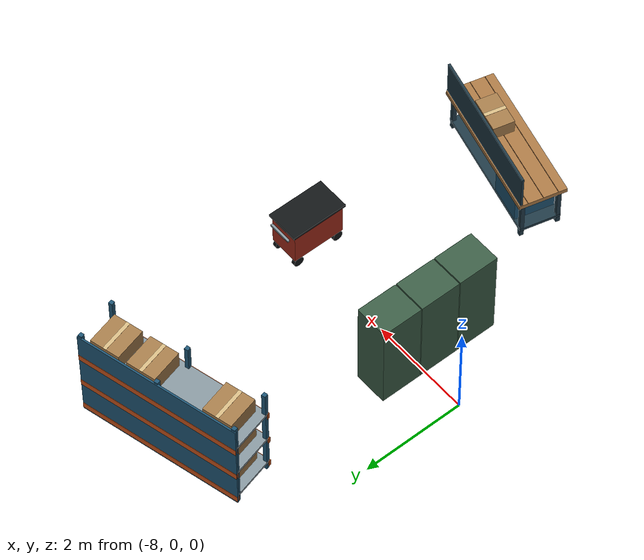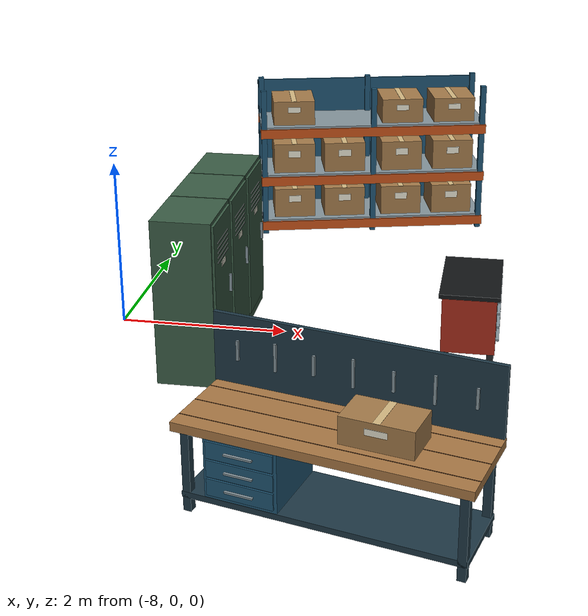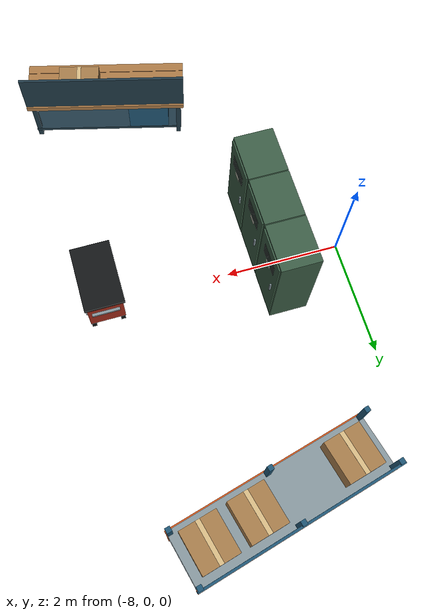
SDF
<sdf version="1.6">
 <world name="go2_workshop">
  <model name="storage_rack_west">
   <static>true</static>
   <pose>-5.5 4.0 0 0 0 0.250000</pose>
   <link name="body">
    <collision name="upright_0_0_collision">
     <pose>-1.55 -0.4 1.05 0 0 0</pose>
     <geometry><box><size>0.075 0.075 2.1</size></box></geometry>
    </collision>
    <visual name="upright_0_0">
     <pose>-1.55 -0.4 1.05 0 0 0</pose>
     <geometry><box><size>0.075 0.075 2.1</size></box></geometry>
     <material>
      <ambient>0.12 0.33 0.45 1</ambient>
      <diffuse>0.12 0.33 0.45 1</diffuse>
      <specular>.08 .08 .08 1</specular>
     </material>
    </visual>
    <collision name="upright_0_1_collision">
     <pose>-1.55 0.4 1.05 0 0 0</pose>
     <geometry><box><size>0.075 0.075 2.1</size></box></geometry>
    </collision>
    <visual name="upright_0_1">
     <pose>-1.55 0.4 1.05 0 0 0</pose>
     <geometry><box><size>0.075 0.075 2.1</size></box></geometry>
     <material>
      <ambient>0.12 0.33 0.45 1</ambient>
      <diffuse>0.12 0.33 0.45 1</diffuse>
      <specular>.08 .08 .08 1</specular>
     </material>
    </visual>
    <collision name="upright_1_0_collision">
     <pose>0 -0.4 1.05 0 0 0</pose>
     <geometry><box><size>0.075 0.075 2.1</size></box></geometry>
    </collision>
    <visual name="upright_1_0">
     <pose>0 -0.4 1.05 0 0 0</pose>
     <geometry><box><size>0.075 0.075 2.1</size></box></geometry>
     <material>
      <ambient>0.12 0.33 0.45 1</ambient>
      <diffuse>0.12 0.33 0.45 1</diffuse>
      <specular>.08 .08 .08 1</specular>
     </material>
    </visual>
    <collision name="upright_1_1_collision">
     <pose>0 0.4 1.05 0 0 0</pose>
     <geometry><box><size>0.075 0.075 2.1</size></box></geometry>
    </collision>
    <visual name="upright_1_1">
     <pose>0 0.4 1.05 0 0 0</pose>
     <geometry><box><size>0.075 0.075 2.1</size></box></geometry>
     <material>
      <ambient>0.12 0.33 0.45 1</ambient>
      <diffuse>0.12 0.33 0.45 1</diffuse>
      <specular>.08 .08 .08 1</specular>
     </material>
    </visual>
    <collision name="upright_2_0_collision">
     <pose>1.55 -0.4 1.05 0 0 0</pose>
     <geometry><box><size>0.075 0.075 2.1</size></box></geometry>
    </collision>
    <visual name="upright_2_0">
     <pose>1.55 -0.4 1.05 0 0 0</pose>
     <geometry><box><size>0.075 0.075 2.1</size></box></geometry>
     <material>
      <ambient>0.12 0.33 0.45 1</ambient>
      <diffuse>0.12 0.33 0.45 1</diffuse>
      <specular>.08 .08 .08 1</specular>
     </material>
    </visual>
    <collision name="upright_2_1_collision">
     <pose>1.55 0.4 1.05 0 0 0</pose>
     <geometry><box><size>0.075 0.075 2.1</size></box></geometry>
    </collision>
    <visual name="upright_2_1">
     <pose>1.55 0.4 1.05 0 0 0</pose>
     <geometry><box><size>0.075 0.075 2.1</size></box></geometry>
     <material>
      <ambient>0.12 0.33 0.45 1</ambient>
      <diffuse>0.12 0.33 0.45 1</diffuse>
      <specular>.08 .08 .08 1</specular>
     </material>
    </visual>
    <collision name="shelf_0_collision">
     <pose>0 0 0.18 0 0 0</pose>
     <geometry><box><size>3.18 0.87 0.055</size></box></geometry>
    </collision>
    <visual name="shelf_0">
     <pose>0 0 0.18 0 0 0</pose>
     <geometry><box><size>3.18 0.87 0.055</size></box></geometry>
     <material>
      <ambient>0.52 0.58 0.61 1</ambient>
      <diffuse>0.52 0.58 0.61 1</diffuse>
      <specular>.08 .08 .08 1</specular>
     </material>
    </visual>
    <collision name="beam_0_0_collision">
     <pose>0 -0.43 0.115 0 0 0</pose>
     <geometry><box><size>3.2 0.055 0.13</size></box></geometry>
    </collision>
    <visual name="beam_0_0">
     <pose>0 -0.43 0.115 0 0 0</pose>
     <geometry><box><size>3.2 0.055 0.13</size></box></geometry>
     <material>
      <ambient>0.78 0.32 0.1 1</ambient>
      <diffuse>0.78 0.32 0.1 1</diffuse>
      <specular>.08 .08 .08 1</specular>
     </material>
    </visual>
    <collision name="beam_0_1_collision">
     <pose>0 0.43 0.115 0 0 0</pose>
     <geometry><box><size>3.2 0.055 0.13</size></box></geometry>
    </collision>
    <visual name="beam_0_1">
     <pose>0 0.43 0.115 0 0 0</pose>
     <geometry><box><size>3.2 0.055 0.13</size></box></geometry>
     <material>
      <ambient>0.78 0.32 0.1 1</ambient>
      <diffuse>0.78 0.32 0.1 1</diffuse>
      <specular>.08 .08 .08 1</specular>
     </material>
    </visual>
    <collision name="shelf_1_collision">
     <pose>0 0 0.85 0 0 0</pose>
     <geometry><box><size>3.18 0.87 0.055</size></box></geometry>
    </collision>
    <visual name="shelf_1">
     <pose>0 0 0.85 0 0 0</pose>
     <geometry><box><size>3.18 0.87 0.055</size></box></geometry>
     <material>
      <ambient>0.52 0.58 0.61 1</ambient>
      <diffuse>0.52 0.58 0.61 1</diffuse>
      <specular>.08 .08 .08 1</specular>
     </material>
    </visual>
    <collision name="beam_1_0_collision">
     <pose>0 -0.43 0.785 0 0 0</pose>
     <geometry><box><size>3.2 0.055 0.13</size></box></geometry>
    </collision>
    <visual name="beam_1_0">
     <pose>0 -0.43 0.785 0 0 0</pose>
     <geometry><box><size>3.2 0.055 0.13</size></box></geometry>
     <material>
      <ambient>0.78 0.32 0.1 1</ambient>
      <diffuse>0.78 0.32 0.1 1</diffuse>
      <specular>.08 .08 .08 1</specular>
     </material>
    </visual>
    <collision name="beam_1_1_collision">
     <pose>0 0.43 0.785 0 0 0</pose>
     <geometry><box><size>3.2 0.055 0.13</size></box></geometry>
    </collision>
    <visual name="beam_1_1">
     <pose>0 0.43 0.785 0 0 0</pose>
     <geometry><box><size>3.2 0.055 0.13</size></box></geometry>
     <material>
      <ambient>0.78 0.32 0.1 1</ambient>
      <diffuse>0.78 0.32 0.1 1</diffuse>
      <specular>.08 .08 .08 1</specular>
     </material>
    </visual>
    <collision name="shelf_2_collision">
     <pose>0 0 1.55 0 0 0</pose>
     <geometry><box><size>3.18 0.87 0.055</size></box></geometry>
    </collision>
    <visual name="shelf_2">
     <pose>0 0 1.55 0 0 0</pose>
     <geometry><box><size>3.18 0.87 0.055</size></box></geometry>
     <material>
      <ambient>0.52 0.58 0.61 1</ambient>
      <diffuse>0.52 0.58 0.61 1</diffuse>
      <specular>.08 .08 .08 1</specular>
     </material>
    </visual>
    <collision name="beam_2_0_collision">
     <pose>0 -0.43 1.485 0 0 0</pose>
     <geometry><box><size>3.2 0.055 0.13</size></box></geometry>
    </collision>
    <visual name="beam_2_0">
     <pose>0 -0.43 1.485 0 0 0</pose>
     <geometry><box><size>3.2 0.055 0.13</size></box></geometry>
     <material>
      <ambient>0.78 0.32 0.1 1</ambient>
      <diffuse>0.78 0.32 0.1 1</diffuse>
      <specular>.08 .08 .08 1</specular>
     </material>
    </visual>
    <collision name="beam_2_1_collision">
     <pose>0 0.43 1.485 0 0 0</pose>
     <geometry><box><size>3.2 0.055 0.13</size></box></geometry>
    </collision>
    <visual name="beam_2_1">
     <pose>0 0.43 1.485 0 0 0</pose>
     <geometry><box><size>3.2 0.055 0.13</size></box></geometry>
     <material>
      <ambient>0.78 0.32 0.1 1</ambient>
      <diffuse>0.78 0.32 0.1 1</diffuse>
      <specular>.08 .08 .08 1</specular>
     </material>
    </visual>
    <collision name="back_panel_collision">
     <pose>0 0.435 1.04 0 0 0</pose>
     <geometry><box><size>3.2 0.035 2.04</size></box></geometry>
    </collision>
    <visual name="back_panel">
     <pose>0 0.435 1.04 0 0 0</pose>
     <geometry><box><size>3.2 0.035 2.04</size></box></geometry>
     <material>
      <ambient>0.12 0.33 0.45 1</ambient>
      <diffuse>0.12 0.33 0.45 1</diffuse>
      <specular>.08 .08 .08 1</specular>
     </material>
    </visual>
    <collision name="box_0_0_collision">
     <pose>-1.12 -0.015 0.418 0 0 0</pose>
     <geometry><box><size>0.58 0.64 0.42</size></box></geometry>
    </collision>
    <visual name="box_0_0">
     <pose>-1.12 -0.015 0.418 0 0 0</pose>
     <geometry><box><size>0.58 0.64 0.42</size></box></geometry>
     <material>
      <ambient>0.64 0.48 0.29 1</ambient>
      <diffuse>0.64 0.48 0.29 1</diffuse>
      <specular>.08 .08 .08 1</specular>
     </material>
    </visual>
    <visual name="box_0_0_tape">
     <pose>-1.12 -0.015 0.629 0 0 0</pose>
     <geometry><box><size>0.07 0.64 0.002</size></box></geometry>
     <material>
      <ambient>0.83 0.72 0.51 1</ambient>
      <diffuse>0.83 0.72 0.51 1</diffuse>
      <specular>.08 .08 .08 1</specular>
     </material>
     <cast_shadows>false</cast_shadows>
    </visual>
    <visual name="box_0_0_label">
     <pose>-1.12 -0.337 0.481 0 0 0</pose>
     <geometry><box><size>0.174 0.003 0.0966</size></box></geometry>
     <material>
      <ambient>0.9 0.89 0.82 1</ambient>
      <diffuse>0.9 0.89 0.82 1</diffuse>
      <specular>.08 .08 .08 1</specular>
     </material>
     <cast_shadows>false</cast_shadows>
    </visual>
    <collision name="box_0_1_collision">
     <pose>-0.4 -0.015 0.418 0 0 0</pose>
     <geometry><box><size>0.58 0.64 0.42</size></box></geometry>
    </collision>
    <visual name="box_0_1">
     <pose>-0.4 -0.015 0.418 0 0 0</pose>
     <geometry><box><size>0.58 0.64 0.42</size></box></geometry>
     <material>
      <ambient>0.64 0.48 0.29 1</ambient>
      <diffuse>0.64 0.48 0.29 1</diffuse>
      <specular>.08 .08 .08 1</specular>
     </material>
    </visual>
    <visual name="box_0_1_tape">
     <pose>-0.4 -0.015 0.629 0 0 0</pose>
     <geometry><box><size>0.07 0.64 0.002</size></box></geometry>
     <material>
      <ambient>0.83 0.72 0.51 1</ambient>
      <diffuse>0.83 0.72 0.51 1</diffuse>
      <specular>.08 .08 .08 1</specular>
     </material>
     <cast_shadows>false</cast_shadows>
    </visual>
    <visual name="box_0_1_label">
     <pose>-0.4 -0.337 0.481 0 0 0</pose>
     <geometry><box><size>0.174 0.003 0.0966</size></box></geometry>
     <material>
      <ambient>0.9 0.89 0.82 1</ambient>
      <diffuse>0.9 0.89 0.82 1</diffuse>
      <specular>.08 .08 .08 1</specular>
     </material>
     <cast_shadows>false</cast_shadows>
    </visual>
    <collision name="box_0_2_collision">
     <pose>0.42 -0.015 0.418 0 0 0</pose>
     <geometry><box><size>0.58 0.64 0.42</size></box></geometry>
    </collision>
    <visual name="box_0_2">
     <pose>0.42 -0.015 0.418 0 0 0</pose>
     <geometry><box><size>0.58 0.64 0.42</size></box></geometry>
     <material>
      <ambient>0.64 0.48 0.29 1</ambient>
      <diffuse>0.64 0.48 0.29 1</diffuse>
      <specular>.08 .08 .08 1</specular>
     </material>
    </visual>
    <visual name="box_0_2_tape">
     <pose>0.42 -0.015 0.629 0 0 0</pose>
     <geometry><box><size>0.07 0.64 0.002</size></box></geometry>
     <material>
      <ambient>0.83 0.72 0.51 1</ambient>
      <diffuse>0.83 0.72 0.51 1</diffuse>
      <specular>.08 .08 .08 1</specular>
     </material>
     <cast_shadows>false</cast_shadows>
    </visual>
    <visual name="box_0_2_label">
     <pose>0.42 -0.337 0.481 0 0 0</pose>
     <geometry><box><size>0.174 0.003 0.0966</size></box></geometry>
     <material>
      <ambient>0.9 0.89 0.82 1</ambient>
      <diffuse>0.9 0.89 0.82 1</diffuse>
      <specular>.08 .08 .08 1</specular>
     </material>
     <cast_shadows>false</cast_shadows>
    </visual>
    <collision name="box_0_3_collision">
     <pose>1.16 -0.015 0.418 0 0 0</pose>
     <geometry><box><size>0.58 0.64 0.42</size></box></geometry>
    </collision>
    <visual name="box_0_3">
     <pose>1.16 -0.015 0.418 0 0 0</pose>
     <geometry><box><size>0.58 0.64 0.42</size></box></geometry>
     <material>
      <ambient>0.64 0.48 0.29 1</ambient>
      <diffuse>0.64 0.48 0.29 1</diffuse>
      <specular>.08 .08 .08 1</specular>
     </material>
    </visual>
    <visual name="box_0_3_tape">
     <pose>1.16 -0.015 0.629 0 0 0</pose>
     <geometry><box><size>0.07 0.64 0.002</size></box></geometry>
     <material>
      <ambient>0.83 0.72 0.51 1</ambient>
      <diffuse>0.83 0.72 0.51 1</diffuse>
      <specular>.08 .08 .08 1</specular>
     </material>
     <cast_shadows>false</cast_shadows>
    </visual>
    <visual name="box_0_3_label">
     <pose>1.16 -0.337 0.481 0 0 0</pose>
     <geometry><box><size>0.174 0.003 0.0966</size></box></geometry>
     <material>
      <ambient>0.9 0.89 0.82 1</ambient>
      <diffuse>0.9 0.89 0.82 1</diffuse>
      <specular>.08 .08 .08 1</specular>
     </material>
     <cast_shadows>false</cast_shadows>
    </visual>
    <collision name="box_1_0_collision">
     <pose>-1.12 -0.015 1.088 0 0 0</pose>
     <geometry><box><size>0.58 0.64 0.42</size></box></geometry>
    </collision>
    <visual name="box_1_0">
     <pose>-1.12 -0.015 1.088 0 0 0</pose>
     <geometry><box><size>0.58 0.64 0.42</size></box></geometry>
     <material>
      <ambient>0.64 0.48 0.29 1</ambient>
      <diffuse>0.64 0.48 0.29 1</diffuse>
      <specular>.08 .08 .08 1</specular>
     </material>
    </visual>
    <visual name="box_1_0_tape">
     <pose>-1.12 -0.015 1.299 0 0 0</pose>
     <geometry><box><size>0.07 0.64 0.002</size></box></geometry>
     <material>
      <ambient>0.83 0.72 0.51 1</ambient>
      <diffuse>0.83 0.72 0.51 1</diffuse>
      <specular>.08 .08 .08 1</specular>
     </material>
     <cast_shadows>false</cast_shadows>
    </visual>
    <visual name="box_1_0_label">
     <pose>-1.12 -0.337 1.151 0 0 0</pose>
     <geometry><box><size>0.174 0.003 0.0966</size></box></geometry>
     <material>
      <ambient>0.9 0.89 0.82 1</ambient>
      <diffuse>0.9 0.89 0.82 1</diffuse>
      <specular>.08 .08 .08 1</specular>
     </material>
     <cast_shadows>false</cast_shadows>
    </visual>
    <collision name="box_1_1_collision">
     <pose>-0.4 -0.015 1.088 0 0 0</pose>
     <geometry><box><size>0.58 0.64 0.42</size></box></geometry>
    </collision>
    <visual name="box_1_1">
     <pose>-0.4 -0.015 1.088 0 0 0</pose>
     <geometry><box><size>0.58 0.64 0.42</size></box></geometry>
     <material>
      <ambient>0.64 0.48 0.29 1</ambient>
      <diffuse>0.64 0.48 0.29 1</diffuse>
      <specular>.08 .08 .08 1</specular>
     </material>
    </visual>
    <visual name="box_1_1_tape">
     <pose>-0.4 -0.015 1.299 0 0 0</pose>
     <geometry><box><size>0.07 0.64 0.002</size></box></geometry>
     <material>
      <ambient>0.83 0.72 0.51 1</ambient>
      <diffuse>0.83 0.72 0.51 1</diffuse>
      <specular>.08 .08 .08 1</specular>
     </material>
     <cast_shadows>false</cast_shadows>
    </visual>
    <visual name="box_1_1_label">
     <pose>-0.4 -0.337 1.151 0 0 0</pose>
     <geometry><box><size>0.174 0.003 0.0966</size></box></geometry>
     <material>
      <ambient>0.9 0.89 0.82 1</ambient>
      <diffuse>0.9 0.89 0.82 1</diffuse>
      <specular>.08 .08 .08 1</specular>
     </material>
     <cast_shadows>false</cast_shadows>
    </visual>
    <collision name="box_1_2_collision">
     <pose>0.42 -0.015 1.088 0 0 0</pose>
     <geometry><box><size>0.58 0.64 0.42</size></box></geometry>
    </collision>
    <visual name="box_1_2">
     <pose>0.42 -0.015 1.088 0 0 0</pose>
     <geometry><box><size>0.58 0.64 0.42</size></box></geometry>
     <material>
      <ambient>0.64 0.48 0.29 1</ambient>
      <diffuse>0.64 0.48 0.29 1</diffuse>
      <specular>.08 .08 .08 1</specular>
     </material>
    </visual>
    <visual name="box_1_2_tape">
     <pose>0.42 -0.015 1.299 0 0 0</pose>
     <geometry><box><size>0.07 0.64 0.002</size></box></geometry>
     <material>
      <ambient>0.83 0.72 0.51 1</ambient>
      <diffuse>0.83 0.72 0.51 1</diffuse>
      <specular>.08 .08 .08 1</specular>
     </material>
     <cast_shadows>false</cast_shadows>
    </visual>
    <visual name="box_1_2_label">
     <pose>0.42 -0.337 1.151 0 0 0</pose>
     <geometry><box><size>0.174 0.003 0.0966</size></box></geometry>
     <material>
      <ambient>0.9 0.89 0.82 1</ambient>
      <diffuse>0.9 0.89 0.82 1</diffuse>
      <specular>.08 .08 .08 1</specular>
     </material>
     <cast_shadows>false</cast_shadows>
    </visual>
    <collision name="box_1_3_collision">
     <pose>1.16 -0.015 1.088 0 0 0</pose>
     <geometry><box><size>0.58 0.64 0.42</size></box></geometry>
    </collision>
    <visual name="box_1_3">
     <pose>1.16 -0.015 1.088 0 0 0</pose>
     <geometry><box><size>0.58 0.64 0.42</size></box></geometry>
     <material>
      <ambient>0.64 0.48 0.29 1</ambient>
      <diffuse>0.64 0.48 0.29 1</diffuse>
      <specular>.08 .08 .08 1</specular>
     </material>
    </visual>
    <visual name="box_1_3_tape">
     <pose>1.16 -0.015 1.299 0 0 0</pose>
     <geometry><box><size>0.07 0.64 0.002</size></box></geometry>
     <material>
      <ambient>0.83 0.72 0.51 1</ambient>
      <diffuse>0.83 0.72 0.51 1</diffuse>
      <specular>.08 .08 .08 1</specular>
     </material>
     <cast_shadows>false</cast_shadows>
    </visual>
    <visual name="box_1_3_label">
     <pose>1.16 -0.337 1.151 0 0 0</pose>
     <geometry><box><size>0.174 0.003 0.0966</size></box></geometry>
     <material>
      <ambient>0.9 0.89 0.82 1</ambient>
      <diffuse>0.9 0.89 0.82 1</diffuse>
      <specular>.08 .08 .08 1</specular>
     </material>
     <cast_shadows>false</cast_shadows>
    </visual>
    <collision name="box_2_0_collision">
     <pose>-1.12 -0.015 1.748 0 0 0</pose>
     <geometry><box><size>0.58 0.64 0.34</size></box></geometry>
    </collision>
    <visual name="box_2_0">
     <pose>-1.12 -0.015 1.748 0 0 0</pose>
     <geometry><box><size>0.58 0.64 0.34</size></box></geometry>
     <material>
      <ambient>0.64 0.48 0.29 1</ambient>
      <diffuse>0.64 0.48 0.29 1</diffuse>
      <specular>.08 .08 .08 1</specular>
     </material>
    </visual>
    <visual name="box_2_0_tape">
     <pose>-1.12 -0.015 1.919 0 0 0</pose>
     <geometry><box><size>0.07 0.64 0.002</size></box></geometry>
     <material>
      <ambient>0.83 0.72 0.51 1</ambient>
      <diffuse>0.83 0.72 0.51 1</diffuse>
      <specular>.08 .08 .08 1</specular>
     </material>
     <cast_shadows>false</cast_shadows>
    </visual>
    <visual name="box_2_0_label">
     <pose>-1.12 -0.337 1.799 0 0 0</pose>
     <geometry><box><size>0.174 0.003 0.0782</size></box></geometry>
     <material>
      <ambient>0.9 0.89 0.82 1</ambient>
      <diffuse>0.9 0.89 0.82 1</diffuse>
      <specular>.08 .08 .08 1</specular>
     </material>
     <cast_shadows>false</cast_shadows>
    </visual>
    <collision name="box_2_2_collision">
     <pose>0.42 -0.015 1.748 0 0 0</pose>
     <geometry><box><size>0.58 0.64 0.34</size></box></geometry>
    </collision>
    <visual name="box_2_2">
     <pose>0.42 -0.015 1.748 0 0 0</pose>
     <geometry><box><size>0.58 0.64 0.34</size></box></geometry>
     <material>
      <ambient>0.64 0.48 0.29 1</ambient>
      <diffuse>0.64 0.48 0.29 1</diffuse>
      <specular>.08 .08 .08 1</specular>
     </material>
    </visual>
    <visual name="box_2_2_tape">
     <pose>0.42 -0.015 1.919 0 0 0</pose>
     <geometry><box><size>0.07 0.64 0.002</size></box></geometry>
     <material>
      <ambient>0.83 0.72 0.51 1</ambient>
      <diffuse>0.83 0.72 0.51 1</diffuse>
      <specular>.08 .08 .08 1</specular>
     </material>
     <cast_shadows>false</cast_shadows>
    </visual>
    <visual name="box_2_2_label">
     <pose>0.42 -0.337 1.799 0 0 0</pose>
     <geometry><box><size>0.174 0.003 0.0782</size></box></geometry>
     <material>
      <ambient>0.9 0.89 0.82 1</ambient>
      <diffuse>0.9 0.89 0.82 1</diffuse>
      <specular>.08 .08 .08 1</specular>
     </material>
     <cast_shadows>false</cast_shadows>
    </visual>
    <collision name="box_2_3_collision">
     <pose>1.16 -0.015 1.748 0 0 0</pose>
     <geometry><box><size>0.58 0.64 0.34</size></box></geometry>
    </collision>
    <visual name="box_2_3">
     <pose>1.16 -0.015 1.748 0 0 0</pose>
     <geometry><box><size>0.58 0.64 0.34</size></box></geometry>
     <material>
      <ambient>0.64 0.48 0.29 1</ambient>
      <diffuse>0.64 0.48 0.29 1</diffuse>
      <specular>.08 .08 .08 1</specular>
     </material>
    </visual>
    <visual name="box_2_3_tape">
     <pose>1.16 -0.015 1.919 0 0 0</pose>
     <geometry><box><size>0.07 0.64 0.002</size></box></geometry>
     <material>
      <ambient>0.83 0.72 0.51 1</ambient>
      <diffuse>0.83 0.72 0.51 1</diffuse>
      <specular>.08 .08 .08 1</specular>
     </material>
     <cast_shadows>false</cast_shadows>
    </visual>
    <visual name="box_2_3_label">
     <pose>1.16 -0.337 1.799 0 0 0</pose>
     <geometry><box><size>0.174 0.003 0.0782</size></box></geometry>
     <material>
      <ambient>0.9 0.89 0.82 1</ambient>
      <diffuse>0.9 0.89 0.82 1</diffuse>
      <specular>.08 .08 .08 1</specular>
     </material>
     <cast_shadows>false</cast_shadows>
    </visual>
   </link>
  </model>
  <model name="packing_bench">
   <static>true</static>
   <pose>-4.8 -3.8 0 0 0 -0.250000</pose>
   <link name="body">
    <collision name="worktop_collision">
     <pose>0 0 0.89 0 0 0</pose>
     <geometry><box><size>2.8 0.92 0.09</size></box></geometry>
    </collision>
    <visual name="worktop">
     <pose>0 0 0.89 0 0 0</pose>
     <geometry><box><size>2.8 0.92 0.09</size></box></geometry>
     <material>
      <ambient>0.66 0.47 0.27 1</ambient>
      <diffuse>0.66 0.47 0.27 1</diffuse>
      <specular>.08 .08 .08 1</specular>
     </material>
    </visual>
    <visual name="plank_seam_0">
     <pose>0 -0.29 0.936 0 0 0</pose>
     <geometry><box><size>2.8 0.008 0.002</size></box></geometry>
     <material>
      <ambient>0.39 0.24 0.12 1</ambient>
      <diffuse>0.39 0.24 0.12 1</diffuse>
      <specular>.08 .08 .08 1</specular>
     </material>
     <cast_shadows>false</cast_shadows>
    </visual>
    <visual name="plank_seam_1">
     <pose>0 0 0.936 0 0 0</pose>
     <geometry><box><size>2.8 0.008 0.002</size></box></geometry>
     <material>
      <ambient>0.39 0.24 0.12 1</ambient>
      <diffuse>0.39 0.24 0.12 1</diffuse>
      <specular>.08 .08 .08 1</specular>
     </material>
     <cast_shadows>false</cast_shadows>
    </visual>
    <visual name="plank_seam_2">
     <pose>0 0.29 0.936 0 0 0</pose>
     <geometry><box><size>2.8 0.008 0.002</size></box></geometry>
     <material>
      <ambient>0.39 0.24 0.12 1</ambient>
      <diffuse>0.39 0.24 0.12 1</diffuse>
      <specular>.08 .08 .08 1</specular>
     </material>
     <cast_shadows>false</cast_shadows>
    </visual>
    <collision name="leg_0_0_collision">
     <pose>-1.3 -0.35 0.425 0 0 0</pose>
     <geometry><box><size>0.08 0.08 0.85</size></box></geometry>
    </collision>
    <visual name="leg_0_0">
     <pose>-1.3 -0.35 0.425 0 0 0</pose>
     <geometry><box><size>0.08 0.08 0.85</size></box></geometry>
     <material>
      <ambient>0.12 0.22 0.27 1</ambient>
      <diffuse>0.12 0.22 0.27 1</diffuse>
      <specular>.08 .08 .08 1</specular>
     </material>
    </visual>
    <collision name="leg_0_1_collision">
     <pose>-1.3 0.35 0.425 0 0 0</pose>
     <geometry><box><size>0.08 0.08 0.85</size></box></geometry>
    </collision>
    <visual name="leg_0_1">
     <pose>-1.3 0.35 0.425 0 0 0</pose>
     <geometry><box><size>0.08 0.08 0.85</size></box></geometry>
     <material>
      <ambient>0.12 0.22 0.27 1</ambient>
      <diffuse>0.12 0.22 0.27 1</diffuse>
      <specular>.08 .08 .08 1</specular>
     </material>
    </visual>
    <collision name="leg_1_0_collision">
     <pose>1.3 -0.35 0.425 0 0 0</pose>
     <geometry><box><size>0.08 0.08 0.85</size></box></geometry>
    </collision>
    <visual name="leg_1_0">
     <pose>1.3 -0.35 0.425 0 0 0</pose>
     <geometry><box><size>0.08 0.08 0.85</size></box></geometry>
     <material>
      <ambient>0.12 0.22 0.27 1</ambient>
      <diffuse>0.12 0.22 0.27 1</diffuse>
      <specular>.08 .08 .08 1</specular>
     </material>
    </visual>
    <collision name="leg_1_1_collision">
     <pose>1.3 0.35 0.425 0 0 0</pose>
     <geometry><box><size>0.08 0.08 0.85</size></box></geometry>
    </collision>
    <visual name="leg_1_1">
     <pose>1.3 0.35 0.425 0 0 0</pose>
     <geometry><box><size>0.08 0.08 0.85</size></box></geometry>
     <material>
      <ambient>0.12 0.22 0.27 1</ambient>
      <diffuse>0.12 0.22 0.27 1</diffuse>
      <specular>.08 .08 .08 1</specular>
     </material>
    </visual>
    <collision name="lower_shelf_collision">
     <pose>0 0 0.17 0 0 0</pose>
     <geometry><box><size>2.7 0.78 0.06</size></box></geometry>
    </collision>
    <visual name="lower_shelf">
     <pose>0 0 0.17 0 0 0</pose>
     <geometry><box><size>2.7 0.78 0.06</size></box></geometry>
     <material>
      <ambient>0.12 0.22 0.27 1</ambient>
      <diffuse>0.12 0.22 0.27 1</diffuse>
      <specular>.08 .08 .08 1</specular>
     </material>
    </visual>
    <collision name="drawer_cabinet_collision">
     <pose>-0.756 0 0.52 0 0 0</pose>
     <geometry><box><size>0.72 0.77 0.65</size></box></geometry>
    </collision>
    <visual name="drawer_cabinet">
     <pose>-0.756 0 0.52 0 0 0</pose>
     <geometry><box><size>0.72 0.77 0.65</size></box></geometry>
     <material>
      <ambient>0.12 0.33 0.45 1</ambient>
      <diffuse>0.12 0.33 0.45 1</diffuse>
      <specular>.08 .08 .08 1</specular>
     </material>
    </visual>
    <visual name="drawer_0">
     <pose>-0.756 -0.393 0.32 0 0 0</pose>
     <geometry><box><size>0.66 0.022 0.17</size></box></geometry>
     <material>
      <ambient>0.12 0.33 0.45 1</ambient>
      <diffuse>0.12 0.33 0.45 1</diffuse>
      <specular>.08 .08 .08 1</specular>
     </material>
     <cast_shadows>false</cast_shadows>
    </visual>
    <visual name="handle_0">
     <pose>-0.756 -0.419 0.32 0 0 0</pose>
     <geometry><box><size>0.28 0.025 0.018</size></box></geometry>
     <material>
      <ambient>0.52 0.58 0.61 1</ambient>
      <diffuse>0.52 0.58 0.61 1</diffuse>
      <specular>.08 .08 .08 1</specular>
     </material>
     <cast_shadows>false</cast_shadows>
    </visual>
    <visual name="drawer_1">
     <pose>-0.756 -0.393 0.51 0 0 0</pose>
     <geometry><box><size>0.66 0.022 0.17</size></box></geometry>
     <material>
      <ambient>0.12 0.33 0.45 1</ambient>
      <diffuse>0.12 0.33 0.45 1</diffuse>
      <specular>.08 .08 .08 1</specular>
     </material>
     <cast_shadows>false</cast_shadows>
    </visual>
    <visual name="handle_1">
     <pose>-0.756 -0.419 0.51 0 0 0</pose>
     <geometry><box><size>0.28 0.025 0.018</size></box></geometry>
     <material>
      <ambient>0.52 0.58 0.61 1</ambient>
      <diffuse>0.52 0.58 0.61 1</diffuse>
      <specular>.08 .08 .08 1</specular>
     </material>
     <cast_shadows>false</cast_shadows>
    </visual>
    <visual name="drawer_2">
     <pose>-0.756 -0.393 0.7 0 0 0</pose>
     <geometry><box><size>0.66 0.022 0.17</size></box></geometry>
     <material>
      <ambient>0.12 0.33 0.45 1</ambient>
      <diffuse>0.12 0.33 0.45 1</diffuse>
      <specular>.08 .08 .08 1</specular>
     </material>
     <cast_shadows>false</cast_shadows>
    </visual>
    <visual name="handle_2">
     <pose>-0.756 -0.419 0.7 0 0 0</pose>
     <geometry><box><size>0.28 0.025 0.018</size></box></geometry>
     <material>
      <ambient>0.52 0.58 0.61 1</ambient>
      <diffuse>0.52 0.58 0.61 1</diffuse>
      <specular>.08 .08 .08 1</specular>
     </material>
     <cast_shadows>false</cast_shadows>
    </visual>
    <collision name="tool_case_collision">
     <pose>0.45 0 1.07 0 0 0</pose>
     <geometry><box><size>0.7 0.42 0.27</size></box></geometry>
    </collision>
    <visual name="tool_case">
     <pose>0.45 0 1.07 0 0 0</pose>
     <geometry><box><size>0.7 0.42 0.27</size></box></geometry>
     <material>
      <ambient>0.64 0.48 0.29 1</ambient>
      <diffuse>0.64 0.48 0.29 1</diffuse>
      <specular>.08 .08 .08 1</specular>
     </material>
    </visual>
    <visual name="tool_case_tape">
     <pose>0.45 0 1.206 0 0 0</pose>
     <geometry><box><size>0.07 0.42 0.002</size></box></geometry>
     <material>
      <ambient>0.83 0.72 0.51 1</ambient>
      <diffuse>0.83 0.72 0.51 1</diffuse>
      <specular>.08 .08 .08 1</specular>
     </material>
     <cast_shadows>false</cast_shadows>
    </visual>
    <visual name="tool_case_label">
     <pose>0.45 -0.212 1.1105 0 0 0</pose>
     <geometry><box><size>0.21 0.003 0.0621</size></box></geometry>
     <material>
      <ambient>0.9 0.89 0.82 1</ambient>
      <diffuse>0.9 0.89 0.82 1</diffuse>
      <specular>.08 .08 .08 1</specular>
     </material>
     <cast_shadows>false</cast_shadows>
    </visual>
    <collision name="tool_board_collision">
     <pose>0 0.42 1.3 0 0 0</pose>
     <geometry><box><size>2.8 0.045 0.7</size></box></geometry>
    </collision>
    <visual name="tool_board">
     <pose>0 0.42 1.3 0 0 0</pose>
     <geometry><box><size>2.8 0.045 0.7</size></box></geometry>
     <material>
      <ambient>0.12 0.22 0.27 1</ambient>
      <diffuse>0.12 0.22 0.27 1</diffuse>
      <specular>.08 .08 .08 1</specular>
     </material>
    </visual>
    <visual name="tool_0">
     <pose>-1.15 0.39 1.3 0 0 0</pose>
     <geometry><box><size>0.025 0.035 0.2</size></box></geometry>
     <material>
      <ambient>0.52 0.58 0.61 1</ambient>
      <diffuse>0.52 0.58 0.61 1</diffuse>
      <specular>.08 .08 .08 1</specular>
     </material>
     <cast_shadows>false</cast_shadows>
    </visual>
    <visual name="tool_1">
     <pose>-0.76667 0.39 1.3 0 0 0</pose>
     <geometry><box><size>0.025 0.035 0.28</size></box></geometry>
     <material>
      <ambient>0.52 0.58 0.61 1</ambient>
      <diffuse>0.52 0.58 0.61 1</diffuse>
      <specular>.08 .08 .08 1</specular>
     </material>
     <cast_shadows>false</cast_shadows>
    </visual>
    <visual name="tool_2">
     <pose>-0.38333 0.39 1.3 0 0 0</pose>
     <geometry><box><size>0.025 0.035 0.2</size></box></geometry>
     <material>
      <ambient>0.52 0.58 0.61 1</ambient>
      <diffuse>0.52 0.58 0.61 1</diffuse>
      <specular>.08 .08 .08 1</specular>
     </material>
     <cast_shadows>false</cast_shadows>
    </visual>
    <visual name="tool_3">
     <pose>0 0.39 1.3 0 0 0</pose>
     <geometry><box><size>0.025 0.035 0.28</size></box></geometry>
     <material>
      <ambient>0.52 0.58 0.61 1</ambient>
      <diffuse>0.52 0.58 0.61 1</diffuse>
      <specular>.08 .08 .08 1</specular>
     </material>
     <cast_shadows>false</cast_shadows>
    </visual>
    <visual name="tool_4">
     <pose>0.38333 0.39 1.3 0 0 0</pose>
     <geometry><box><size>0.025 0.035 0.2</size></box></geometry>
     <material>
      <ambient>0.52 0.58 0.61 1</ambient>
      <diffuse>0.52 0.58 0.61 1</diffuse>
      <specular>.08 .08 .08 1</specular>
     </material>
     <cast_shadows>false</cast_shadows>
    </visual>
    <visual name="tool_5">
     <pose>0.76667 0.39 1.3 0 0 0</pose>
     <geometry><box><size>0.025 0.035 0.28</size></box></geometry>
     <material>
      <ambient>0.52 0.58 0.61 1</ambient>
      <diffuse>0.52 0.58 0.61 1</diffuse>
      <specular>.08 .08 .08 1</specular>
     </material>
     <cast_shadows>false</cast_shadows>
    </visual>
    <visual name="tool_6">
     <pose>1.15 0.39 1.3 0 0 0</pose>
     <geometry><box><size>0.025 0.035 0.2</size></box></geometry>
     <material>
      <ambient>0.52 0.58 0.61 1</ambient>
      <diffuse>0.52 0.58 0.61 1</diffuse>
      <specular>.08 .08 .08 1</specular>
     </material>
     <cast_shadows>false</cast_shadows>
    </visual>
   </link>
  </model>
  <model name="tool_lockers">
   <static>true</static>
   <pose>-6.8 -0.3 0 0 0 1.570796</pose>
   <link name="body">
    <collision name="body_0_collision">
     <pose>-0.82 0 0.95 0 0 0</pose>
     <geometry><box><size>0.8 0.66 1.9</size></box></geometry>
    </collision>
    <visual name="body_0">
     <pose>-0.82 0 0.95 0 0 0</pose>
     <geometry><box><size>0.8 0.66 1.9</size></box></geometry>
     <material>
      <ambient>0.23 0.36 0.27 1</ambient>
      <diffuse>0.23 0.36 0.27 1</diffuse>
      <specular>.08 .08 .08 1</specular>
     </material>
    </visual>
    <visual name="door_0">
     <pose>-0.82 -0.342 1 0 0 0</pose>
     <geometry><box><size>0.74 0.028 1.72</size></box></geometry>
     <material>
      <ambient>0.23 0.36 0.27 1</ambient>
      <diffuse>0.23 0.36 0.27 1</diffuse>
      <specular>.08 .08 .08 1</specular>
     </material>
     <cast_shadows>false</cast_shadows>
    </visual>
    <visual name="handle_0">
     <pose>-0.57 -0.368 0.98 0 0 0</pose>
     <geometry><box><size>0.025 0.035 0.2</size></box></geometry>
     <material>
      <ambient>0.52 0.58 0.61 1</ambient>
      <diffuse>0.52 0.58 0.61 1</diffuse>
      <specular>.08 .08 .08 1</specular>
     </material>
     <cast_shadows>false</cast_shadows>
    </visual>
    <visual name="vent_0_0">
     <pose>-0.82 -0.359 1.62 0 0 0</pose>
     <geometry><box><size>0.46 0.006 0.012</size></box></geometry>
     <material>
      <ambient>0.07 0.08 0.085 1</ambient>
      <diffuse>0.07 0.08 0.085 1</diffuse>
      <specular>.08 .08 .08 1</specular>
     </material>
     <cast_shadows>false</cast_shadows>
    </visual>
    <visual name="vent_0_1">
     <pose>-0.82 -0.359 1.565 0 0 0</pose>
     <geometry><box><size>0.46 0.006 0.012</size></box></geometry>
     <material>
      <ambient>0.07 0.08 0.085 1</ambient>
      <diffuse>0.07 0.08 0.085 1</diffuse>
      <specular>.08 .08 .08 1</specular>
     </material>
     <cast_shadows>false</cast_shadows>
    </visual>
    <visual name="vent_0_2">
     <pose>-0.82 -0.359 1.51 0 0 0</pose>
     <geometry><box><size>0.46 0.006 0.012</size></box></geometry>
     <material>
      <ambient>0.07 0.08 0.085 1</ambient>
      <diffuse>0.07 0.08 0.085 1</diffuse>
      <specular>.08 .08 .08 1</specular>
     </material>
     <cast_shadows>false</cast_shadows>
    </visual>
    <visual name="vent_0_3">
     <pose>-0.82 -0.359 1.455 0 0 0</pose>
     <geometry><box><size>0.46 0.006 0.012</size></box></geometry>
     <material>
      <ambient>0.07 0.08 0.085 1</ambient>
      <diffuse>0.07 0.08 0.085 1</diffuse>
      <specular>.08 .08 .08 1</specular>
     </material>
     <cast_shadows>false</cast_shadows>
    </visual>
    <visual name="vent_0_4">
     <pose>-0.82 -0.359 1.4 0 0 0</pose>
     <geometry><box><size>0.46 0.006 0.012</size></box></geometry>
     <material>
      <ambient>0.07 0.08 0.085 1</ambient>
      <diffuse>0.07 0.08 0.085 1</diffuse>
      <specular>.08 .08 .08 1</specular>
     </material>
     <cast_shadows>false</cast_shadows>
    </visual>
    <visual name="nameplate_0">
     <pose>-0.82 -0.36 1.33 0 0 0</pose>
     <geometry><box><size>0.16 0.006 0.06</size></box></geometry>
     <material>
      <ambient>0.9 0.89 0.82 1</ambient>
      <diffuse>0.9 0.89 0.82 1</diffuse>
      <specular>.08 .08 .08 1</specular>
     </material>
     <cast_shadows>false</cast_shadows>
    </visual>
    <collision name="body_1_collision">
     <pose>0 0 0.95 0 0 0</pose>
     <geometry><box><size>0.8 0.66 1.9</size></box></geometry>
    </collision>
    <visual name="body_1">
     <pose>0 0 0.95 0 0 0</pose>
     <geometry><box><size>0.8 0.66 1.9</size></box></geometry>
     <material>
      <ambient>0.23 0.36 0.27 1</ambient>
      <diffuse>0.23 0.36 0.27 1</diffuse>
      <specular>.08 .08 .08 1</specular>
     </material>
    </visual>
    <visual name="door_1">
     <pose>0 -0.342 1 0 0 0</pose>
     <geometry><box><size>0.74 0.028 1.72</size></box></geometry>
     <material>
      <ambient>0.23 0.36 0.27 1</ambient>
      <diffuse>0.23 0.36 0.27 1</diffuse>
      <specular>.08 .08 .08 1</specular>
     </material>
     <cast_shadows>false</cast_shadows>
    </visual>
    <visual name="handle_1">
     <pose>0.25 -0.368 0.98 0 0 0</pose>
     <geometry><box><size>0.025 0.035 0.2</size></box></geometry>
     <material>
      <ambient>0.52 0.58 0.61 1</ambient>
      <diffuse>0.52 0.58 0.61 1</diffuse>
      <specular>.08 .08 .08 1</specular>
     </material>
     <cast_shadows>false</cast_shadows>
    </visual>
    <visual name="vent_1_0">
     <pose>0 -0.359 1.62 0 0 0</pose>
     <geometry><box><size>0.46 0.006 0.012</size></box></geometry>
     <material>
      <ambient>0.07 0.08 0.085 1</ambient>
      <diffuse>0.07 0.08 0.085 1</diffuse>
      <specular>.08 .08 .08 1</specular>
     </material>
     <cast_shadows>false</cast_shadows>
    </visual>
    <visual name="vent_1_1">
     <pose>0 -0.359 1.565 0 0 0</pose>
     <geometry><box><size>0.46 0.006 0.012</size></box></geometry>
     <material>
      <ambient>0.07 0.08 0.085 1</ambient>
      <diffuse>0.07 0.08 0.085 1</diffuse>
      <specular>.08 .08 .08 1</specular>
     </material>
     <cast_shadows>false</cast_shadows>
    </visual>
    <visual name="vent_1_2">
     <pose>0 -0.359 1.51 0 0 0</pose>
     <geometry><box><size>0.46 0.006 0.012</size></box></geometry>
     <material>
      <ambient>0.07 0.08 0.085 1</ambient>
      <diffuse>0.07 0.08 0.085 1</diffuse>
      <specular>.08 .08 .08 1</specular>
     </material>
     <cast_shadows>false</cast_shadows>
    </visual>
    <visual name="vent_1_3">
     <pose>0 -0.359 1.455 0 0 0</pose>
     <geometry><box><size>0.46 0.006 0.012</size></box></geometry>
     <material>
      <ambient>0.07 0.08 0.085 1</ambient>
      <diffuse>0.07 0.08 0.085 1</diffuse>
      <specular>.08 .08 .08 1</specular>
     </material>
     <cast_shadows>false</cast_shadows>
    </visual>
    <visual name="vent_1_4">
     <pose>0 -0.359 1.4 0 0 0</pose>
     <geometry><box><size>0.46 0.006 0.012</size></box></geometry>
     <material>
      <ambient>0.07 0.08 0.085 1</ambient>
      <diffuse>0.07 0.08 0.085 1</diffuse>
      <specular>.08 .08 .08 1</specular>
     </material>
     <cast_shadows>false</cast_shadows>
    </visual>
    <visual name="nameplate_1">
     <pose>0 -0.36 1.33 0 0 0</pose>
     <geometry><box><size>0.16 0.006 0.06</size></box></geometry>
     <material>
      <ambient>0.9 0.89 0.82 1</ambient>
      <diffuse>0.9 0.89 0.82 1</diffuse>
      <specular>.08 .08 .08 1</specular>
     </material>
     <cast_shadows>false</cast_shadows>
    </visual>
    <collision name="body_2_collision">
     <pose>0.82 0 0.95 0 0 0</pose>
     <geometry><box><size>0.8 0.66 1.9</size></box></geometry>
    </collision>
    <visual name="body_2">
     <pose>0.82 0 0.95 0 0 0</pose>
     <geometry><box><size>0.8 0.66 1.9</size></box></geometry>
     <material>
      <ambient>0.23 0.36 0.27 1</ambient>
      <diffuse>0.23 0.36 0.27 1</diffuse>
      <specular>.08 .08 .08 1</specular>
     </material>
    </visual>
    <visual name="door_2">
     <pose>0.82 -0.342 1 0 0 0</pose>
     <geometry><box><size>0.74 0.028 1.72</size></box></geometry>
     <material>
      <ambient>0.23 0.36 0.27 1</ambient>
      <diffuse>0.23 0.36 0.27 1</diffuse>
      <specular>.08 .08 .08 1</specular>
     </material>
     <cast_shadows>false</cast_shadows>
    </visual>
    <visual name="handle_2">
     <pose>1.07 -0.368 0.98 0 0 0</pose>
     <geometry><box><size>0.025 0.035 0.2</size></box></geometry>
     <material>
      <ambient>0.52 0.58 0.61 1</ambient>
      <diffuse>0.52 0.58 0.61 1</diffuse>
      <specular>.08 .08 .08 1</specular>
     </material>
     <cast_shadows>false</cast_shadows>
    </visual>
    <visual name="vent_2_0">
     <pose>0.82 -0.359 1.62 0 0 0</pose>
     <geometry><box><size>0.46 0.006 0.012</size></box></geometry>
     <material>
      <ambient>0.07 0.08 0.085 1</ambient>
      <diffuse>0.07 0.08 0.085 1</diffuse>
      <specular>.08 .08 .08 1</specular>
     </material>
     <cast_shadows>false</cast_shadows>
    </visual>
    <visual name="vent_2_1">
     <pose>0.82 -0.359 1.565 0 0 0</pose>
     <geometry><box><size>0.46 0.006 0.012</size></box></geometry>
     <material>
      <ambient>0.07 0.08 0.085 1</ambient>
      <diffuse>0.07 0.08 0.085 1</diffuse>
      <specular>.08 .08 .08 1</specular>
     </material>
     <cast_shadows>false</cast_shadows>
    </visual>
    <visual name="vent_2_2">
     <pose>0.82 -0.359 1.51 0 0 0</pose>
     <geometry><box><size>0.46 0.006 0.012</size></box></geometry>
     <material>
      <ambient>0.07 0.08 0.085 1</ambient>
      <diffuse>0.07 0.08 0.085 1</diffuse>
      <specular>.08 .08 .08 1</specular>
     </material>
     <cast_shadows>false</cast_shadows>
    </visual>
    <visual name="vent_2_3">
     <pose>0.82 -0.359 1.455 0 0 0</pose>
     <geometry><box><size>0.46 0.006 0.012</size></box></geometry>
     <material>
      <ambient>0.07 0.08 0.085 1</ambient>
      <diffuse>0.07 0.08 0.085 1</diffuse>
      <specular>.08 .08 .08 1</specular>
     </material>
     <cast_shadows>false</cast_shadows>
    </visual>
    <visual name="vent_2_4">
     <pose>0.82 -0.359 1.4 0 0 0</pose>
     <geometry><box><size>0.46 0.006 0.012</size></box></geometry>
     <material>
      <ambient>0.07 0.08 0.085 1</ambient>
      <diffuse>0.07 0.08 0.085 1</diffuse>
      <specular>.08 .08 .08 1</specular>
     </material>
     <cast_shadows>false</cast_shadows>
    </visual>
    <visual name="nameplate_2">
     <pose>0.82 -0.36 1.33 0 0 0</pose>
     <geometry><box><size>0.16 0.006 0.06</size></box></geometry>
     <material>
      <ambient>0.9 0.89 0.82 1</ambient>
      <diffuse>0.9 0.89 0.82 1</diffuse>
      <specular>.08 .08 .08 1</specular>
     </material>
     <cast_shadows>false</cast_shadows>
    </visual>
   </link>
  </model>
  <model name="tool_trolley">
   <static>true</static>
   <pose>-3.8 -0.2 0 0 0 1.570796</pose>
   <link name="body">
    <collision name="cabinet_collision">
     <pose>0 0 0.57 0 0 0</pose>
     <geometry><box><size>1.05 0.6 0.66</size></box></geometry>
    </collision>
    <visual name="cabinet">
     <pose>0 0 0.57 0 0 0</pose>
     <geometry><box><size>1.05 0.6 0.66</size></box></geometry>
     <material>
      <ambient>0.64 0.17 0.1 1</ambient>
      <diffuse>0.64 0.17 0.1 1</diffuse>
      <specular>.08 .08 .08 1</specular>
     </material>
    </visual>
    <collision name="caster_0_0_collision">
     <pose>-0.43 -0.25 0.13 1.5708 0 0</pose>
     <geometry><cylinder><radius>0.1</radius><length>0.075</length></cylinder></geometry>
    </collision>
    <visual name="caster_0_0">
     <pose>-0.43 -0.25 0.13 1.5708 0 0</pose>
     <geometry><cylinder><radius>0.1</radius><length>0.075</length></cylinder></geometry>
     <material>
      <ambient>0.07 0.08 0.085 1</ambient>
      <diffuse>0.07 0.08 0.085 1</diffuse>
      <specular>.08 .08 .08 1</specular>
     </material>
    </visual>
    <collision name="caster_0_1_collision">
     <pose>-0.43 0.25 0.13 1.5708 0 0</pose>
     <geometry><cylinder><radius>0.1</radius><length>0.075</length></cylinder></geometry>
    </collision>
    <visual name="caster_0_1">
     <pose>-0.43 0.25 0.13 1.5708 0 0</pose>
     <geometry><cylinder><radius>0.1</radius><length>0.075</length></cylinder></geometry>
     <material>
      <ambient>0.07 0.08 0.085 1</ambient>
      <diffuse>0.07 0.08 0.085 1</diffuse>
      <specular>.08 .08 .08 1</specular>
     </material>
    </visual>
    <collision name="caster_1_0_collision">
     <pose>0.43 -0.25 0.13 1.5708 0 0</pose>
     <geometry><cylinder><radius>0.1</radius><length>0.075</length></cylinder></geometry>
    </collision>
    <visual name="caster_1_0">
     <pose>0.43 -0.25 0.13 1.5708 0 0</pose>
     <geometry><cylinder><radius>0.1</radius><length>0.075</length></cylinder></geometry>
     <material>
      <ambient>0.07 0.08 0.085 1</ambient>
      <diffuse>0.07 0.08 0.085 1</diffuse>
      <specular>.08 .08 .08 1</specular>
     </material>
    </visual>
    <collision name="caster_1_1_collision">
     <pose>0.43 0.25 0.13 1.5708 0 0</pose>
     <geometry><cylinder><radius>0.1</radius><length>0.075</length></cylinder></geometry>
    </collision>
    <visual name="caster_1_1">
     <pose>0.43 0.25 0.13 1.5708 0 0</pose>
     <geometry><cylinder><radius>0.1</radius><length>0.075</length></cylinder></geometry>
     <material>
      <ambient>0.07 0.08 0.085 1</ambient>
      <diffuse>0.07 0.08 0.085 1</diffuse>
      <specular>.08 .08 .08 1</specular>
     </material>
    </visual>
    <collision name="rubber_top_collision">
     <pose>0 0 0.925 0 0 0</pose>
     <geometry><box><size>1.13 0.67 0.05</size></box></geometry>
    </collision>
    <visual name="rubber_top">
     <pose>0 0 0.925 0 0 0</pose>
     <geometry><box><size>1.13 0.67 0.05</size></box></geometry>
     <material>
      <ambient>0.07 0.08 0.085 1</ambient>
      <diffuse>0.07 0.08 0.085 1</diffuse>
      <specular>.08 .08 .08 1</specular>
     </material>
    </visual>
    <visual name="drawer_handle_0">
     <pose>0 -0.32 0.36 0 0 0</pose>
     <geometry><box><size>0.78 0.035 0.02</size></box></geometry>
     <material>
      <ambient>0.52 0.58 0.61 1</ambient>
      <diffuse>0.52 0.58 0.61 1</diffuse>
      <specular>.08 .08 .08 1</specular>
     </material>
     <cast_shadows>false</cast_shadows>
    </visual>
    <visual name="drawer_handle_1">
     <pose>0 -0.32 0.52 0 0 0</pose>
     <geometry><box><size>0.78 0.035 0.02</size></box></geometry>
     <material>
      <ambient>0.52 0.58 0.61 1</ambient>
      <diffuse>0.52 0.58 0.61 1</diffuse>
      <specular>.08 .08 .08 1</specular>
     </material>
     <cast_shadows>false</cast_shadows>
    </visual>
    <visual name="drawer_handle_2">
     <pose>0 -0.32 0.68 0 0 0</pose>
     <geometry><box><size>0.78 0.035 0.02</size></box></geometry>
     <material>
      <ambient>0.52 0.58 0.61 1</ambient>
      <diffuse>0.52 0.58 0.61 1</diffuse>
      <specular>.08 .08 .08 1</specular>
     </material>
     <cast_shadows>false</cast_shadows>
    </visual>
    <visual name="drawer_handle_3">
     <pose>0 -0.32 0.82 0 0 0</pose>
     <geometry><box><size>0.78 0.035 0.02</size></box></geometry>
     <material>
      <ambient>0.52 0.58 0.61 1</ambient>
      <diffuse>0.52 0.58 0.61 1</diffuse>
      <specular>.08 .08 .08 1</specular>
     </material>
     <cast_shadows>false</cast_shadows>
    </visual>
    <collision name="push_handle_collision">
     <pose>0.6 0 0.8 0 0 0</pose>
     <geometry><box><size>0.045 0.46 0.04</size></box></geometry>
    </collision>
    <visual name="push_handle">
     <pose>0.6 0 0.8 0 0 0</pose>
     <geometry><box><size>0.045 0.46 0.04</size></box></geometry>
     <material>
      <ambient>0.52 0.58 0.61 1</ambient>
      <diffuse>0.52 0.58 0.61 1</diffuse>
      <specular>.08 .08 .08 1</specular>
     </material>
    </visual>
   </link>
  </model>
 </world>
</sdf>
